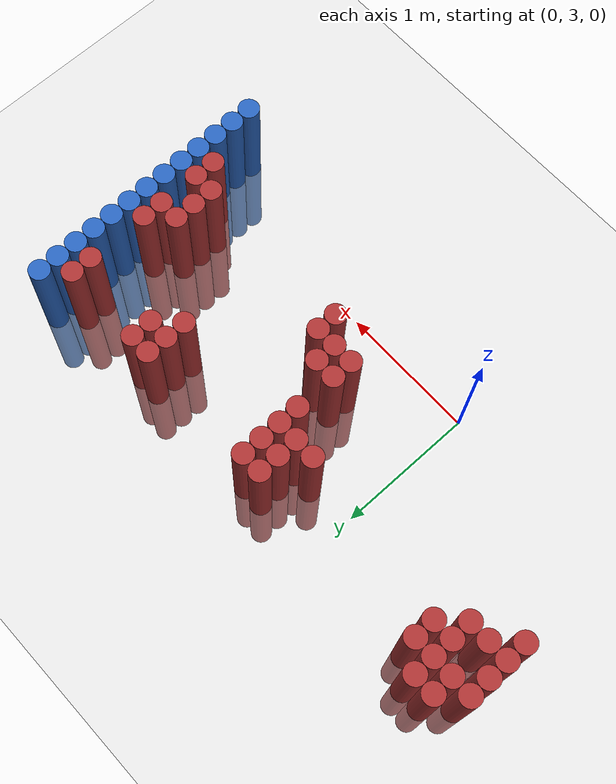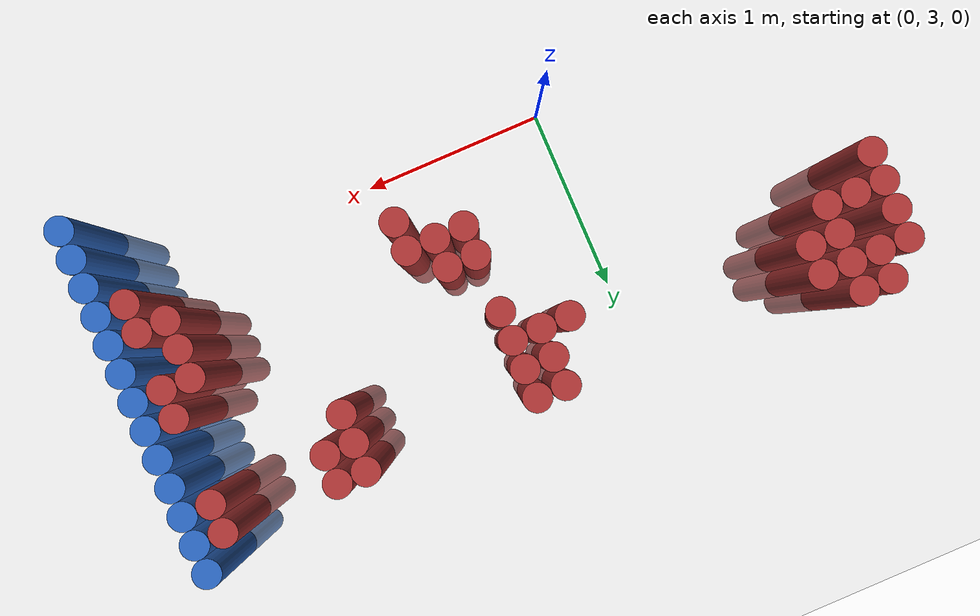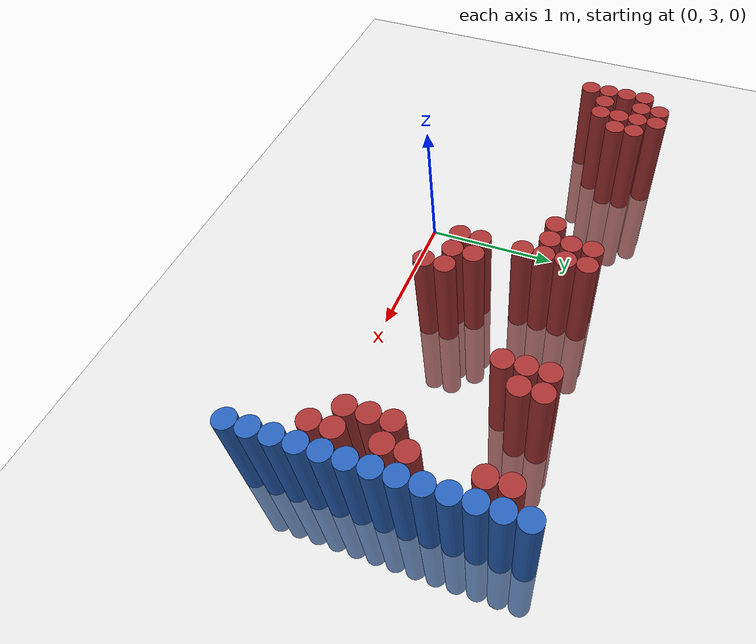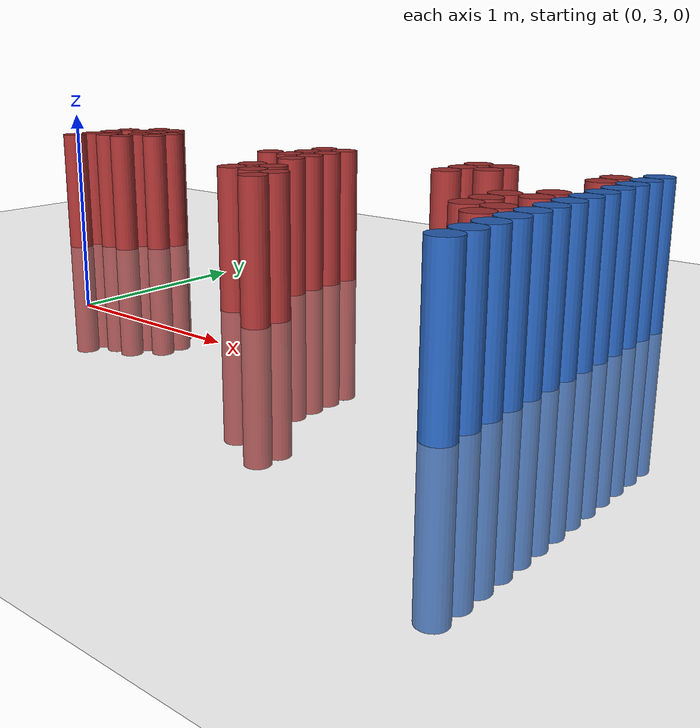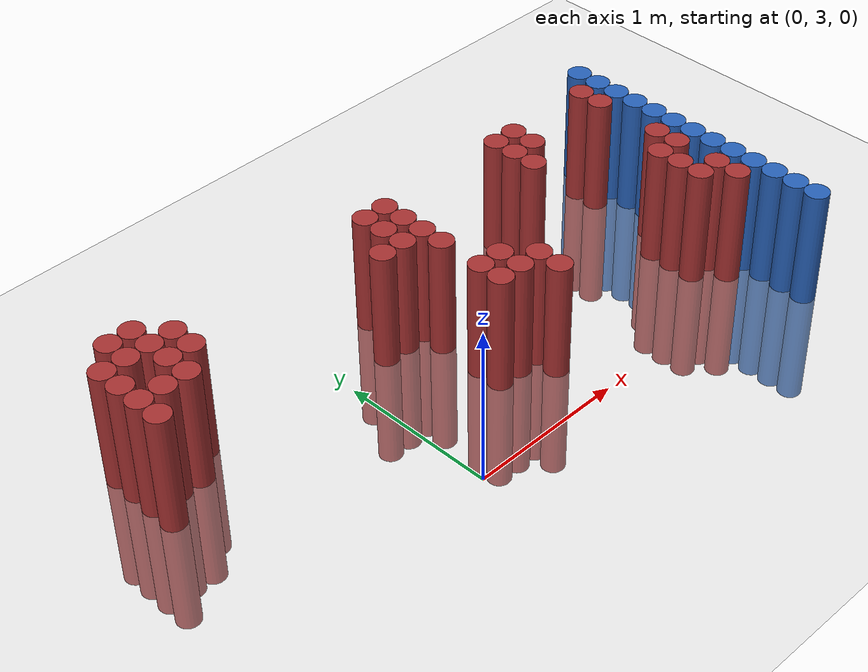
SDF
<sdf version="1.6">
 <world name="default">
  <model name="ground_plane">
   <static>1</static>
   <link name="link">
    <collision name="collision">
     <geometry><plane><normal>0 0 1</normal><size>100 100</size></plane></geometry>
     <surface><friction><ode><mu>100</mu><mu2>50</mu2></ode></friction></surface>
    </collision>
    <visual name="visual">
     <cast_shadows>0</cast_shadows>
     <geometry><plane><normal>0 0 1</normal><size>100 100</size></plane></geometry>
     <material>
      <script><uri>file://media/materials/scripts/gazebo.material</uri><name>Gazebo/Grey</name></script>
     </material>
    </visual>
   </link>
  </model>
  <model name="unit_cylinder_154">
   <static>1</static>
   <pose>-1.325000 3.925000 0.000000 0.000000 0.000000 0.000000</pose>
   <link name="link">
    <inertial>
     <mass>1</mass>
     <inertia><ixx>0.145833</ixx><ixy>0</ixy><ixz>0</ixz><iyy>0.145833</iyy><iyz>0</iyz><izz>0.125</izz></inertia>
    </inertial>
    <collision name="collision">
     <geometry><cylinder><radius>0.075000</radius><length>1.5</length></cylinder></geometry>
    </collision>
    <visual name="visual">
     <geometry><cylinder><radius>0.075000</radius><length>1.5</length></cylinder></geometry>
     <material>
      <ambient>0.648000 0.192000 0.192000 1</ambient>
      <diffuse>0.648000 0.192000 0.192000 1</diffuse>
     </material>
     <material>
      <script><name>Gazebo/Grey</name><uri>file://media/materials/scripts/gazebo.material</uri></script>
     </material>
    </visual>
   </link>
  </model>
  <model name="unit_cylinder_155">
   <static>1</static>
   <pose>-1.325000 4.075000 0.000000 0.000000 0.000000 0.000000</pose>
   <link name="link">
    <inertial>
     <mass>1</mass>
     <inertia><ixx>0.145833</ixx><ixy>0</ixy><ixz>0</ixz><iyy>0.145833</iyy><iyz>0</iyz><izz>0.125</izz></inertia>
    </inertial>
    <collision name="collision">
     <geometry><cylinder><radius>0.075000</radius><length>1.5</length></cylinder></geometry>
    </collision>
    <visual name="visual">
     <geometry><cylinder><radius>0.075000</radius><length>1.5</length></cylinder></geometry>
     <material>
      <ambient>0.648000 0.192000 0.192000 1</ambient>
      <diffuse>0.648000 0.192000 0.192000 1</diffuse>
     </material>
     <material>
      <script><name>Gazebo/Grey</name><uri>file://media/materials/scripts/gazebo.material</uri></script>
     </material>
    </visual>
   </link>
  </model>
  <model name="unit_cylinder_156">
   <static>1</static>
   <pose>-1.325000 4.225000 0.000000 0.000000 0.000000 0.000000</pose>
   <link name="link">
    <inertial>
     <mass>1</mass>
     <inertia><ixx>0.145833</ixx><ixy>0</ixy><ixz>0</ixz><iyy>0.145833</iyy><iyz>0</iyz><izz>0.125</izz></inertia>
    </inertial>
    <collision name="collision">
     <geometry><cylinder><radius>0.075000</radius><length>1.5</length></cylinder></geometry>
    </collision>
    <visual name="visual">
     <geometry><cylinder><radius>0.075000</radius><length>1.5</length></cylinder></geometry>
     <material>
      <ambient>0.648000 0.192000 0.192000 1</ambient>
      <diffuse>0.648000 0.192000 0.192000 1</diffuse>
     </material>
     <material>
      <script><name>Gazebo/Grey</name><uri>file://media/materials/scripts/gazebo.material</uri></script>
     </material>
    </visual>
   </link>
  </model>
  <model name="unit_cylinder_157">
   <static>1</static>
   <pose>-1.325000 4.375000 0.000000 0.000000 0.000000 0.000000</pose>
   <link name="link">
    <inertial>
     <mass>1</mass>
     <inertia><ixx>0.145833</ixx><ixy>0</ixy><ixz>0</ixz><iyy>0.145833</iyy><iyz>0</iyz><izz>0.125</izz></inertia>
    </inertial>
    <collision name="collision">
     <geometry><cylinder><radius>0.075000</radius><length>1.5</length></cylinder></geometry>
    </collision>
    <visual name="visual">
     <geometry><cylinder><radius>0.075000</radius><length>1.5</length></cylinder></geometry>
     <material>
      <ambient>0.648000 0.192000 0.192000 1</ambient>
      <diffuse>0.648000 0.192000 0.192000 1</diffuse>
     </material>
     <material>
      <script><name>Gazebo/Grey</name><uri>file://media/materials/scripts/gazebo.material</uri></script>
     </material>
    </visual>
   </link>
  </model>
  <model name="unit_cylinder_159">
   <static>1</static>
   <pose>-1.175000 4.075000 0.000000 0.000000 0.000000 0.000000</pose>
   <link name="link">
    <inertial>
     <mass>1</mass>
     <inertia><ixx>0.145833</ixx><ixy>0</ixy><ixz>0</ixz><iyy>0.145833</iyy><iyz>0</iyz><izz>0.125</izz></inertia>
    </inertial>
    <collision name="collision">
     <geometry><cylinder><radius>0.075000</radius><length>1.5</length></cylinder></geometry>
    </collision>
    <visual name="visual">
     <geometry><cylinder><radius>0.075000</radius><length>1.5</length></cylinder></geometry>
     <material>
      <ambient>0.648000 0.192000 0.192000 1</ambient>
      <diffuse>0.648000 0.192000 0.192000 1</diffuse>
     </material>
     <material>
      <script><name>Gazebo/Grey</name><uri>file://media/materials/scripts/gazebo.material</uri></script>
     </material>
    </visual>
   </link>
  </model>
  <model name="unit_cylinder_160">
   <static>1</static>
   <pose>-1.175000 4.375000 0.000000 0.000000 0.000000 0.000000</pose>
   <link name="link">
    <inertial>
     <mass>1</mass>
     <inertia><ixx>0.145833</ixx><ixy>0</ixy><ixz>0</ixz><iyy>0.145833</iyy><iyz>0</iyz><izz>0.125</izz></inertia>
    </inertial>
    <collision name="collision">
     <geometry><cylinder><radius>0.075000</radius><length>1.5</length></cylinder></geometry>
    </collision>
    <visual name="visual">
     <geometry><cylinder><radius>0.075000</radius><length>1.5</length></cylinder></geometry>
     <material>
      <ambient>0.648000 0.192000 0.192000 1</ambient>
      <diffuse>0.648000 0.192000 0.192000 1</diffuse>
     </material>
     <material>
      <script><name>Gazebo/Grey</name><uri>file://media/materials/scripts/gazebo.material</uri></script>
     </material>
    </visual>
   </link>
  </model>
  <model name="unit_cylinder_161">
   <static>1</static>
   <pose>-1.175000 4.525000 0.000000 0.000000 0.000000 0.000000</pose>
   <link name="link">
    <inertial>
     <mass>1</mass>
     <inertia><ixx>0.145833</ixx><ixy>0</ixy><ixz>0</ixz><iyy>0.145833</iyy><iyz>0</iyz><izz>0.125</izz></inertia>
    </inertial>
    <collision name="collision">
     <geometry><cylinder><radius>0.075000</radius><length>1.5</length></cylinder></geometry>
    </collision>
    <visual name="visual">
     <geometry><cylinder><radius>0.075000</radius><length>1.5</length></cylinder></geometry>
     <material>
      <ambient>0.648000 0.192000 0.192000 1</ambient>
      <diffuse>0.648000 0.192000 0.192000 1</diffuse>
     </material>
     <material>
      <script><name>Gazebo/Grey</name><uri>file://media/materials/scripts/gazebo.material</uri></script>
     </material>
    </visual>
   </link>
  </model>
  <model name="unit_cylinder_165">
   <static>1</static>
   <pose>-1.025000 4.075000 0.000000 0.000000 0.000000 0.000000</pose>
   <link name="link">
    <inertial>
     <mass>1</mass>
     <inertia><ixx>0.145833</ixx><ixy>0</ixy><ixz>0</ixz><iyy>0.145833</iyy><iyz>0</iyz><izz>0.125</izz></inertia>
    </inertial>
    <collision name="collision">
     <geometry><cylinder><radius>0.075000</radius><length>1.5</length></cylinder></geometry>
    </collision>
    <visual name="visual">
     <geometry><cylinder><radius>0.075000</radius><length>1.5</length></cylinder></geometry>
     <material>
      <ambient>0.648000 0.192000 0.192000 1</ambient>
      <diffuse>0.648000 0.192000 0.192000 1</diffuse>
     </material>
     <material>
      <script><name>Gazebo/Grey</name><uri>file://media/materials/scripts/gazebo.material</uri></script>
     </material>
    </visual>
   </link>
  </model>
  <model name="unit_cylinder_166">
   <static>1</static>
   <pose>-1.025000 4.225000 0.000000 0.000000 0.000000 0.000000</pose>
   <link name="link">
    <inertial>
     <mass>1</mass>
     <inertia><ixx>0.145833</ixx><ixy>0</ixy><ixz>0</ixz><iyy>0.145833</iyy><iyz>0</iyz><izz>0.125</izz></inertia>
    </inertial>
    <collision name="collision">
     <geometry><cylinder><radius>0.075000</radius><length>1.5</length></cylinder></geometry>
    </collision>
    <visual name="visual">
     <geometry><cylinder><radius>0.075000</radius><length>1.5</length></cylinder></geometry>
     <material>
      <ambient>0.648000 0.192000 0.192000 1</ambient>
      <diffuse>0.648000 0.192000 0.192000 1</diffuse>
     </material>
     <material>
      <script><name>Gazebo/Grey</name><uri>file://media/materials/scripts/gazebo.material</uri></script>
     </material>
    </visual>
   </link>
  </model>
  <model name="unit_cylinder_167">
   <static>1</static>
   <pose>-1.025000 4.375000 0.000000 0.000000 0.000000 0.000000</pose>
   <link name="link">
    <inertial>
     <mass>1</mass>
     <inertia><ixx>0.145833</ixx><ixy>0</ixy><ixz>0</ixz><iyy>0.145833</iyy><iyz>0</iyz><izz>0.125</izz></inertia>
    </inertial>
    <collision name="collision">
     <geometry><cylinder><radius>0.075000</radius><length>1.5</length></cylinder></geometry>
    </collision>
    <visual name="visual">
     <geometry><cylinder><radius>0.075000</radius><length>1.5</length></cylinder></geometry>
     <material>
      <ambient>0.648000 0.192000 0.192000 1</ambient>
      <diffuse>0.648000 0.192000 0.192000 1</diffuse>
     </material>
     <material>
      <script><name>Gazebo/Grey</name><uri>file://media/materials/scripts/gazebo.material</uri></script>
     </material>
    </visual>
   </link>
  </model>
  <model name="unit_cylinder_168">
   <static>1</static>
   <pose>-1.025000 4.525000 0.000000 0.000000 0.000000 0.000000</pose>
   <link name="link">
    <inertial>
     <mass>1</mass>
     <inertia><ixx>0.145833</ixx><ixy>0</ixy><ixz>0</ixz><iyy>0.145833</iyy><iyz>0</iyz><izz>0.125</izz></inertia>
    </inertial>
    <collision name="collision">
     <geometry><cylinder><radius>0.075000</radius><length>1.5</length></cylinder></geometry>
    </collision>
    <visual name="visual">
     <geometry><cylinder><radius>0.075000</radius><length>1.5</length></cylinder></geometry>
     <material>
      <ambient>0.648000 0.192000 0.192000 1</ambient>
      <diffuse>0.648000 0.192000 0.192000 1</diffuse>
     </material>
     <material>
      <script><name>Gazebo/Grey</name><uri>file://media/materials/scripts/gazebo.material</uri></script>
     </material>
    </visual>
   </link>
  </model>
  <model name="unit_cylinder_173">
   <static>1</static>
   <pose>-0.875000 4.225000 0.000000 0.000000 0.000000 0.000000</pose>
   <link name="link">
    <inertial>
     <mass>1</mass>
     <inertia><ixx>0.145833</ixx><ixy>0</ixy><ixz>0</ixz><iyy>0.145833</iyy><iyz>0</iyz><izz>0.125</izz></inertia>
    </inertial>
    <collision name="collision">
     <geometry><cylinder><radius>0.075000</radius><length>1.5</length></cylinder></geometry>
    </collision>
    <visual name="visual">
     <geometry><cylinder><radius>0.075000</radius><length>1.5</length></cylinder></geometry>
     <material>
      <ambient>0.648000 0.192000 0.192000 1</ambient>
      <diffuse>0.648000 0.192000 0.192000 1</diffuse>
     </material>
     <material>
      <script><name>Gazebo/Grey</name><uri>file://media/materials/scripts/gazebo.material</uri></script>
     </material>
    </visual>
   </link>
  </model>
  <model name="unit_cylinder_174">
   <static>1</static>
   <pose>-0.875000 4.375000 0.000000 0.000000 0.000000 0.000000</pose>
   <link name="link">
    <inertial>
     <mass>1</mass>
     <inertia><ixx>0.145833</ixx><ixy>0</ixy><ixz>0</ixz><iyy>0.145833</iyy><iyz>0</iyz><izz>0.125</izz></inertia>
    </inertial>
    <collision name="collision">
     <geometry><cylinder><radius>0.075000</radius><length>1.5</length></cylinder></geometry>
    </collision>
    <visual name="visual">
     <geometry><cylinder><radius>0.075000</radius><length>1.5</length></cylinder></geometry>
     <material>
      <ambient>0.648000 0.192000 0.192000 1</ambient>
      <diffuse>0.648000 0.192000 0.192000 1</diffuse>
     </material>
     <material>
      <script><name>Gazebo/Grey</name><uri>file://media/materials/scripts/gazebo.material</uri></script>
     </material>
    </visual>
   </link>
  </model>
  <model name="unit_cylinder_189">
   <static>1</static>
   <pose>0.325000 4.075000 0.000000 0.000000 0.000000 0.000000</pose>
   <link name="link">
    <inertial>
     <mass>1</mass>
     <inertia><ixx>0.145833</ixx><ixy>0</ixy><ixz>0</ixz><iyy>0.145833</iyy><iyz>0</iyz><izz>0.125</izz></inertia>
    </inertial>
    <collision name="collision">
     <geometry><cylinder><radius>0.075000</radius><length>1.5</length></cylinder></geometry>
    </collision>
    <visual name="visual">
     <geometry><cylinder><radius>0.075000</radius><length>1.5</length></cylinder></geometry>
     <material>
      <ambient>0.648000 0.192000 0.192000 1</ambient>
      <diffuse>0.648000 0.192000 0.192000 1</diffuse>
     </material>
     <material>
      <script><name>Gazebo/Grey</name><uri>file://media/materials/scripts/gazebo.material</uri></script>
     </material>
    </visual>
   </link>
  </model>
  <model name="unit_cylinder_194">
   <static>1</static>
   <pose>0.475000 4.075000 0.000000 0.000000 0.000000 0.000000</pose>
   <link name="link">
    <inertial>
     <mass>1</mass>
     <inertia><ixx>0.145833</ixx><ixy>0</ixy><ixz>0</ixz><iyy>0.145833</iyy><iyz>0</iyz><izz>0.125</izz></inertia>
    </inertial>
    <collision name="collision">
     <geometry><cylinder><radius>0.075000</radius><length>1.5</length></cylinder></geometry>
    </collision>
    <visual name="visual">
     <geometry><cylinder><radius>0.075000</radius><length>1.5</length></cylinder></geometry>
     <material>
      <ambient>0.648000 0.192000 0.192000 1</ambient>
      <diffuse>0.648000 0.192000 0.192000 1</diffuse>
     </material>
     <material>
      <script><name>Gazebo/Grey</name><uri>file://media/materials/scripts/gazebo.material</uri></script>
     </material>
    </visual>
   </link>
  </model>
  <model name="unit_cylinder_195">
   <static>1</static>
   <pose>0.475000 4.225000 0.000000 0.000000 0.000000 0.000000</pose>
   <link name="link">
    <inertial>
     <mass>1</mass>
     <inertia><ixx>0.145833</ixx><ixy>0</ixy><ixz>0</ixz><iyy>0.145833</iyy><iyz>0</iyz><izz>0.125</izz></inertia>
    </inertial>
    <collision name="collision">
     <geometry><cylinder><radius>0.075000</radius><length>1.5</length></cylinder></geometry>
    </collision>
    <visual name="visual">
     <geometry><cylinder><radius>0.075000</radius><length>1.5</length></cylinder></geometry>
     <material>
      <ambient>0.648000 0.192000 0.192000 1</ambient>
      <diffuse>0.648000 0.192000 0.192000 1</diffuse>
     </material>
     <material>
      <script><name>Gazebo/Grey</name><uri>file://media/materials/scripts/gazebo.material</uri></script>
     </material>
    </visual>
   </link>
  </model>
  <model name="unit_cylinder_196">
   <static>1</static>
   <pose>0.475000 4.375000 0.000000 0.000000 0.000000 0.000000</pose>
   <link name="link">
    <inertial>
     <mass>1</mass>
     <inertia><ixx>0.145833</ixx><ixy>0</ixy><ixz>0</ixz><iyy>0.145833</iyy><iyz>0</iyz><izz>0.125</izz></inertia>
    </inertial>
    <collision name="collision">
     <geometry><cylinder><radius>0.075000</radius><length>1.5</length></cylinder></geometry>
    </collision>
    <visual name="visual">
     <geometry><cylinder><radius>0.075000</radius><length>1.5</length></cylinder></geometry>
     <material>
      <ambient>0.648000 0.192000 0.192000 1</ambient>
      <diffuse>0.648000 0.192000 0.192000 1</diffuse>
     </material>
     <material>
      <script><name>Gazebo/Grey</name><uri>file://media/materials/scripts/gazebo.material</uri></script>
     </material>
    </visual>
   </link>
  </model>
  <model name="unit_cylinder_197">
   <static>1</static>
   <pose>0.625000 3.475000 0.000000 0.000000 0.000000 0.000000</pose>
   <link name="link">
    <inertial>
     <mass>1</mass>
     <inertia><ixx>0.145833</ixx><ixy>0</ixy><ixz>0</ixz><iyy>0.145833</iyy><iyz>0</iyz><izz>0.125</izz></inertia>
    </inertial>
    <collision name="collision">
     <geometry><cylinder><radius>0.075000</radius><length>1.5</length></cylinder></geometry>
    </collision>
    <visual name="visual">
     <geometry><cylinder><radius>0.075000</radius><length>1.5</length></cylinder></geometry>
     <material>
      <ambient>0.648000 0.192000 0.192000 1</ambient>
      <diffuse>0.648000 0.192000 0.192000 1</diffuse>
     </material>
     <material>
      <script><name>Gazebo/Grey</name><uri>file://media/materials/scripts/gazebo.material</uri></script>
     </material>
    </visual>
   </link>
  </model>
  <model name="unit_cylinder_198">
   <static>1</static>
   <pose>0.625000 3.625000 0.000000 0.000000 0.000000 0.000000</pose>
   <link name="link">
    <inertial>
     <mass>1</mass>
     <inertia><ixx>0.145833</ixx><ixy>0</ixy><ixz>0</ixz><iyy>0.145833</iyy><iyz>0</iyz><izz>0.125</izz></inertia>
    </inertial>
    <collision name="collision">
     <geometry><cylinder><radius>0.075000</radius><length>1.5</length></cylinder></geometry>
    </collision>
    <visual name="visual">
     <geometry><cylinder><radius>0.075000</radius><length>1.5</length></cylinder></geometry>
     <material>
      <ambient>0.648000 0.192000 0.192000 1</ambient>
      <diffuse>0.648000 0.192000 0.192000 1</diffuse>
     </material>
     <material>
      <script><name>Gazebo/Grey</name><uri>file://media/materials/scripts/gazebo.material</uri></script>
     </material>
    </visual>
   </link>
  </model>
  <model name="unit_cylinder_199">
   <static>1</static>
   <pose>0.625000 3.925000 0.000000 0.000000 0.000000 0.000000</pose>
   <link name="link">
    <inertial>
     <mass>1</mass>
     <inertia><ixx>0.145833</ixx><ixy>0</ixy><ixz>0</ixz><iyy>0.145833</iyy><iyz>0</iyz><izz>0.125</izz></inertia>
    </inertial>
    <collision name="collision">
     <geometry><cylinder><radius>0.075000</radius><length>1.5</length></cylinder></geometry>
    </collision>
    <visual name="visual">
     <geometry><cylinder><radius>0.075000</radius><length>1.5</length></cylinder></geometry>
     <material>
      <ambient>0.648000 0.192000 0.192000 1</ambient>
      <diffuse>0.648000 0.192000 0.192000 1</diffuse>
     </material>
     <material>
      <script><name>Gazebo/Grey</name><uri>file://media/materials/scripts/gazebo.material</uri></script>
     </material>
    </visual>
   </link>
  </model>
  <model name="unit_cylinder_200">
   <static>1</static>
   <pose>0.625000 4.075000 0.000000 0.000000 0.000000 0.000000</pose>
   <link name="link">
    <inertial>
     <mass>1</mass>
     <inertia><ixx>0.145833</ixx><ixy>0</ixy><ixz>0</ixz><iyy>0.145833</iyy><iyz>0</iyz><izz>0.125</izz></inertia>
    </inertial>
    <collision name="collision">
     <geometry><cylinder><radius>0.075000</radius><length>1.5</length></cylinder></geometry>
    </collision>
    <visual name="visual">
     <geometry><cylinder><radius>0.075000</radius><length>1.5</length></cylinder></geometry>
     <material>
      <ambient>0.648000 0.192000 0.192000 1</ambient>
      <diffuse>0.648000 0.192000 0.192000 1</diffuse>
     </material>
     <material>
      <script><name>Gazebo/Grey</name><uri>file://media/materials/scripts/gazebo.material</uri></script>
     </material>
    </visual>
   </link>
  </model>
  <model name="unit_cylinder_201">
   <static>1</static>
   <pose>0.625000 4.225000 0.000000 0.000000 0.000000 0.000000</pose>
   <link name="link">
    <inertial>
     <mass>1</mass>
     <inertia><ixx>0.145833</ixx><ixy>0</ixy><ixz>0</ixz><iyy>0.145833</iyy><iyz>0</iyz><izz>0.125</izz></inertia>
    </inertial>
    <collision name="collision">
     <geometry><cylinder><radius>0.075000</radius><length>1.5</length></cylinder></geometry>
    </collision>
    <visual name="visual">
     <geometry><cylinder><radius>0.075000</radius><length>1.5</length></cylinder></geometry>
     <material>
      <ambient>0.648000 0.192000 0.192000 1</ambient>
      <diffuse>0.648000 0.192000 0.192000 1</diffuse>
     </material>
     <material>
      <script><name>Gazebo/Grey</name><uri>file://media/materials/scripts/gazebo.material</uri></script>
     </material>
    </visual>
   </link>
  </model>
  <model name="unit_cylinder_202">
   <static>1</static>
   <pose>0.625000 4.375000 0.000000 0.000000 0.000000 0.000000</pose>
   <link name="link">
    <inertial>
     <mass>1</mass>
     <inertia><ixx>0.145833</ixx><ixy>0</ixy><ixz>0</ixz><iyy>0.145833</iyy><iyz>0</iyz><izz>0.125</izz></inertia>
    </inertial>
    <collision name="collision">
     <geometry><cylinder><radius>0.075000</radius><length>1.5</length></cylinder></geometry>
    </collision>
    <visual name="visual">
     <geometry><cylinder><radius>0.075000</radius><length>1.5</length></cylinder></geometry>
     <material>
      <ambient>0.648000 0.192000 0.192000 1</ambient>
      <diffuse>0.648000 0.192000 0.192000 1</diffuse>
     </material>
     <material>
      <script><name>Gazebo/Grey</name><uri>file://media/materials/scripts/gazebo.material</uri></script>
     </material>
    </visual>
   </link>
  </model>
  <model name="unit_cylinder_203">
   <static>1</static>
   <pose>0.775000 3.475000 0.000000 0.000000 0.000000 0.000000</pose>
   <link name="link">
    <inertial>
     <mass>1</mass>
     <inertia><ixx>0.145833</ixx><ixy>0</ixy><ixz>0</ixz><iyy>0.145833</iyy><iyz>0</iyz><izz>0.125</izz></inertia>
    </inertial>
    <collision name="collision">
     <geometry><cylinder><radius>0.075000</radius><length>1.5</length></cylinder></geometry>
    </collision>
    <visual name="visual">
     <geometry><cylinder><radius>0.075000</radius><length>1.5</length></cylinder></geometry>
     <material>
      <ambient>0.648000 0.192000 0.192000 1</ambient>
      <diffuse>0.648000 0.192000 0.192000 1</diffuse>
     </material>
     <material>
      <script><name>Gazebo/Grey</name><uri>file://media/materials/scripts/gazebo.material</uri></script>
     </material>
    </visual>
   </link>
  </model>
  <model name="unit_cylinder_204">
   <static>1</static>
   <pose>0.775000 3.625000 0.000000 0.000000 0.000000 0.000000</pose>
   <link name="link">
    <inertial>
     <mass>1</mass>
     <inertia><ixx>0.145833</ixx><ixy>0</ixy><ixz>0</ixz><iyy>0.145833</iyy><iyz>0</iyz><izz>0.125</izz></inertia>
    </inertial>
    <collision name="collision">
     <geometry><cylinder><radius>0.075000</radius><length>1.5</length></cylinder></geometry>
    </collision>
    <visual name="visual">
     <geometry><cylinder><radius>0.075000</radius><length>1.5</length></cylinder></geometry>
     <material>
      <ambient>0.648000 0.192000 0.192000 1</ambient>
      <diffuse>0.648000 0.192000 0.192000 1</diffuse>
     </material>
     <material>
      <script><name>Gazebo/Grey</name><uri>file://media/materials/scripts/gazebo.material</uri></script>
     </material>
    </visual>
   </link>
  </model>
  <model name="unit_cylinder_205">
   <static>1</static>
   <pose>0.925000 3.325000 0.000000 0.000000 0.000000 0.000000</pose>
   <link name="link">
    <inertial>
     <mass>1</mass>
     <inertia><ixx>0.145833</ixx><ixy>0</ixy><ixz>0</ixz><iyy>0.145833</iyy><iyz>0</iyz><izz>0.125</izz></inertia>
    </inertial>
    <collision name="collision">
     <geometry><cylinder><radius>0.075000</radius><length>1.5</length></cylinder></geometry>
    </collision>
    <visual name="visual">
     <geometry><cylinder><radius>0.075000</radius><length>1.5</length></cylinder></geometry>
     <material>
      <ambient>0.648000 0.192000 0.192000 1</ambient>
      <diffuse>0.648000 0.192000 0.192000 1</diffuse>
     </material>
     <material>
      <script><name>Gazebo/Grey</name><uri>file://media/materials/scripts/gazebo.material</uri></script>
     </material>
    </visual>
   </link>
  </model>
  <model name="unit_cylinder_206">
   <static>1</static>
   <pose>0.925000 3.475000 0.000000 0.000000 0.000000 0.000000</pose>
   <link name="link">
    <inertial>
     <mass>1</mass>
     <inertia><ixx>0.145833</ixx><ixy>0</ixy><ixz>0</ixz><iyy>0.145833</iyy><iyz>0</iyz><izz>0.125</izz></inertia>
    </inertial>
    <collision name="collision">
     <geometry><cylinder><radius>0.075000</radius><length>1.5</length></cylinder></geometry>
    </collision>
    <visual name="visual">
     <geometry><cylinder><radius>0.075000</radius><length>1.5</length></cylinder></geometry>
     <material>
      <ambient>0.648000 0.192000 0.192000 1</ambient>
      <diffuse>0.648000 0.192000 0.192000 1</diffuse>
     </material>
     <material>
      <script><name>Gazebo/Grey</name><uri>file://media/materials/scripts/gazebo.material</uri></script>
     </material>
    </visual>
   </link>
  </model>
  <model name="unit_cylinder_207">
   <static>1</static>
   <pose>1.525000 4.075000 0.000000 0.000000 0.000000 0.000000</pose>
   <link name="link">
    <inertial>
     <mass>1</mass>
     <inertia><ixx>0.145833</ixx><ixy>0</ixy><ixz>0</ixz><iyy>0.145833</iyy><iyz>0</iyz><izz>0.125</izz></inertia>
    </inertial>
    <collision name="collision">
     <geometry><cylinder><radius>0.075000</radius><length>1.5</length></cylinder></geometry>
    </collision>
    <visual name="visual">
     <geometry><cylinder><radius>0.075000</radius><length>1.5</length></cylinder></geometry>
     <material>
      <ambient>0.648000 0.192000 0.192000 1</ambient>
      <diffuse>0.648000 0.192000 0.192000 1</diffuse>
     </material>
     <material>
      <script><name>Gazebo/Grey</name><uri>file://media/materials/scripts/gazebo.material</uri></script>
     </material>
    </visual>
   </link>
  </model>
  <model name="unit_cylinder_208">
   <static>1</static>
   <pose>1.525000 4.225000 0.000000 0.000000 0.000000 0.000000</pose>
   <link name="link">
    <inertial>
     <mass>1</mass>
     <inertia><ixx>0.145833</ixx><ixy>0</ixy><ixz>0</ixz><iyy>0.145833</iyy><iyz>0</iyz><izz>0.125</izz></inertia>
    </inertial>
    <collision name="collision">
     <geometry><cylinder><radius>0.075000</radius><length>1.5</length></cylinder></geometry>
    </collision>
    <visual name="visual">
     <geometry><cylinder><radius>0.075000</radius><length>1.5</length></cylinder></geometry>
     <material>
      <ambient>0.648000 0.192000 0.192000 1</ambient>
      <diffuse>0.648000 0.192000 0.192000 1</diffuse>
     </material>
     <material>
      <script><name>Gazebo/Grey</name><uri>file://media/materials/scripts/gazebo.material</uri></script>
     </material>
    </visual>
   </link>
  </model>
  <model name="unit_cylinder_209">
   <static>1</static>
   <pose>1.525000 4.375000 0.000000 0.000000 0.000000 0.000000</pose>
   <link name="link">
    <inertial>
     <mass>1</mass>
     <inertia><ixx>0.145833</ixx><ixy>0</ixy><ixz>0</ixz><iyy>0.145833</iyy><iyz>0</iyz><izz>0.125</izz></inertia>
    </inertial>
    <collision name="collision">
     <geometry><cylinder><radius>0.075000</radius><length>1.5</length></cylinder></geometry>
    </collision>
    <visual name="visual">
     <geometry><cylinder><radius>0.075000</radius><length>1.5</length></cylinder></geometry>
     <material>
      <ambient>0.648000 0.192000 0.192000 1</ambient>
      <diffuse>0.648000 0.192000 0.192000 1</diffuse>
     </material>
     <material>
      <script><name>Gazebo/Grey</name><uri>file://media/materials/scripts/gazebo.material</uri></script>
     </material>
    </visual>
   </link>
  </model>
  <model name="unit_cylinder_212">
   <static>1</static>
   <pose>1.675000 4.225000 0.000000 0.000000 0.000000 0.000000</pose>
   <link name="link">
    <inertial>
     <mass>1</mass>
     <inertia><ixx>0.145833</ixx><ixy>0</ixy><ixz>0</ixz><iyy>0.145833</iyy><iyz>0</iyz><izz>0.125</izz></inertia>
    </inertial>
    <collision name="collision">
     <geometry><cylinder><radius>0.075000</radius><length>1.5</length></cylinder></geometry>
    </collision>
    <visual name="visual">
     <geometry><cylinder><radius>0.075000</radius><length>1.5</length></cylinder></geometry>
     <material>
      <ambient>0.648000 0.192000 0.192000 1</ambient>
      <diffuse>0.648000 0.192000 0.192000 1</diffuse>
     </material>
     <material>
      <script><name>Gazebo/Grey</name><uri>file://media/materials/scripts/gazebo.material</uri></script>
     </material>
    </visual>
   </link>
  </model>
  <model name="unit_cylinder_213">
   <static>1</static>
   <pose>1.675000 4.375000 0.000000 0.000000 0.000000 0.000000</pose>
   <link name="link">
    <inertial>
     <mass>1</mass>
     <inertia><ixx>0.145833</ixx><ixy>0</ixy><ixz>0</ixz><iyy>0.145833</iyy><iyz>0</iyz><izz>0.125</izz></inertia>
    </inertial>
    <collision name="collision">
     <geometry><cylinder><radius>0.075000</radius><length>1.5</length></cylinder></geometry>
    </collision>
    <visual name="visual">
     <geometry><cylinder><radius>0.075000</radius><length>1.5</length></cylinder></geometry>
     <material>
      <ambient>0.648000 0.192000 0.192000 1</ambient>
      <diffuse>0.648000 0.192000 0.192000 1</diffuse>
     </material>
     <material>
      <script><name>Gazebo/Grey</name><uri>file://media/materials/scripts/gazebo.material</uri></script>
     </material>
    </visual>
   </link>
  </model>
  <model name="unit_cylinder_221">
   <static>1</static>
   <pose>2.125000 3.325000 0.000000 0.000000 0.000000 0.000000</pose>
   <link name="link">
    <inertial>
     <mass>1</mass>
     <inertia><ixx>0.145833</ixx><ixy>0</ixy><ixz>0</ixz><iyy>0.145833</iyy><iyz>0</iyz><izz>0.125</izz></inertia>
    </inertial>
    <collision name="collision">
     <geometry><cylinder><radius>0.075000</radius><length>1.5</length></cylinder></geometry>
    </collision>
    <visual name="visual">
     <geometry><cylinder><radius>0.075000</radius><length>1.5</length></cylinder></geometry>
     <material>
      <ambient>0.648000 0.192000 0.192000 1</ambient>
      <diffuse>0.648000 0.192000 0.192000 1</diffuse>
     </material>
     <material>
      <script><name>Gazebo/Grey</name><uri>file://media/materials/scripts/gazebo.material</uri></script>
     </material>
    </visual>
   </link>
  </model>
  <model name="unit_cylinder_222">
   <static>1</static>
   <pose>2.125000 3.475000 0.000000 0.000000 0.000000 0.000000</pose>
   <link name="link">
    <inertial>
     <mass>1</mass>
     <inertia><ixx>0.145833</ixx><ixy>0</ixy><ixz>0</ixz><iyy>0.145833</iyy><iyz>0</iyz><izz>0.125</izz></inertia>
    </inertial>
    <collision name="collision">
     <geometry><cylinder><radius>0.075000</radius><length>1.5</length></cylinder></geometry>
    </collision>
    <visual name="visual">
     <geometry><cylinder><radius>0.075000</radius><length>1.5</length></cylinder></geometry>
     <material>
      <ambient>0.648000 0.192000 0.192000 1</ambient>
      <diffuse>0.648000 0.192000 0.192000 1</diffuse>
     </material>
     <material>
      <script><name>Gazebo/Grey</name><uri>file://media/materials/scripts/gazebo.material</uri></script>
     </material>
    </visual>
   </link>
  </model>
  <model name="unit_cylinder_223">
   <static>1</static>
   <pose>2.125000 3.625000 0.000000 0.000000 0.000000 0.000000</pose>
   <link name="link">
    <inertial>
     <mass>1</mass>
     <inertia><ixx>0.145833</ixx><ixy>0</ixy><ixz>0</ixz><iyy>0.145833</iyy><iyz>0</iyz><izz>0.125</izz></inertia>
    </inertial>
    <collision name="collision">
     <geometry><cylinder><radius>0.075000</radius><length>1.5</length></cylinder></geometry>
    </collision>
    <visual name="visual">
     <geometry><cylinder><radius>0.075000</radius><length>1.5</length></cylinder></geometry>
     <material>
      <ambient>0.648000 0.192000 0.192000 1</ambient>
      <diffuse>0.648000 0.192000 0.192000 1</diffuse>
     </material>
     <material>
      <script><name>Gazebo/Grey</name><uri>file://media/materials/scripts/gazebo.material</uri></script>
     </material>
    </visual>
   </link>
  </model>
  <model name="unit_cylinder_231">
   <static>1</static>
   <pose>2.275000 3.175000 0.000000 0.000000 0.000000 0.000000</pose>
   <link name="link">
    <inertial>
     <mass>1</mass>
     <inertia><ixx>0.145833</ixx><ixy>0</ixy><ixz>0</ixz><iyy>0.145833</iyy><iyz>0</iyz><izz>0.125</izz></inertia>
    </inertial>
    <collision name="collision">
     <geometry><cylinder><radius>0.075000</radius><length>1.5</length></cylinder></geometry>
    </collision>
    <visual name="visual">
     <geometry><cylinder><radius>0.075000</radius><length>1.5</length></cylinder></geometry>
     <material>
      <ambient>0.648000 0.192000 0.192000 1</ambient>
      <diffuse>0.648000 0.192000 0.192000 1</diffuse>
     </material>
     <material>
      <script><name>Gazebo/Grey</name><uri>file://media/materials/scripts/gazebo.material</uri></script>
     </material>
    </visual>
   </link>
  </model>
  <model name="unit_cylinder_232">
   <static>1</static>
   <pose>2.275000 3.325000 0.000000 0.000000 0.000000 0.000000</pose>
   <link name="link">
    <inertial>
     <mass>1</mass>
     <inertia><ixx>0.145833</ixx><ixy>0</ixy><ixz>0</ixz><iyy>0.145833</iyy><iyz>0</iyz><izz>0.125</izz></inertia>
    </inertial>
    <collision name="collision">
     <geometry><cylinder><radius>0.075000</radius><length>1.5</length></cylinder></geometry>
    </collision>
    <visual name="visual">
     <geometry><cylinder><radius>0.075000</radius><length>1.5</length></cylinder></geometry>
     <material>
      <ambient>0.648000 0.192000 0.192000 1</ambient>
      <diffuse>0.648000 0.192000 0.192000 1</diffuse>
     </material>
     <material>
      <script><name>Gazebo/Grey</name><uri>file://media/materials/scripts/gazebo.material</uri></script>
     </material>
    </visual>
   </link>
  </model>
  <model name="unit_cylinder_233">
   <static>1</static>
   <pose>2.275000 3.625000 0.000000 0.000000 0.000000 0.000000</pose>
   <link name="link">
    <inertial>
     <mass>1</mass>
     <inertia><ixx>0.145833</ixx><ixy>0</ixy><ixz>0</ixz><iyy>0.145833</iyy><iyz>0</iyz><izz>0.125</izz></inertia>
    </inertial>
    <collision name="collision">
     <geometry><cylinder><radius>0.075000</radius><length>1.5</length></cylinder></geometry>
    </collision>
    <visual name="visual">
     <geometry><cylinder><radius>0.075000</radius><length>1.5</length></cylinder></geometry>
     <material>
      <ambient>0.648000 0.192000 0.192000 1</ambient>
      <diffuse>0.648000 0.192000 0.192000 1</diffuse>
     </material>
     <material>
      <script><name>Gazebo/Grey</name><uri>file://media/materials/scripts/gazebo.material</uri></script>
     </material>
    </visual>
   </link>
  </model>
  <model name="unit_cylinder_234">
   <static>1</static>
   <pose>2.275000 3.775000 0.000000 0.000000 0.000000 0.000000</pose>
   <link name="link">
    <inertial>
     <mass>1</mass>
     <inertia><ixx>0.145833</ixx><ixy>0</ixy><ixz>0</ixz><iyy>0.145833</iyy><iyz>0</iyz><izz>0.125</izz></inertia>
    </inertial>
    <collision name="collision">
     <geometry><cylinder><radius>0.075000</radius><length>1.5</length></cylinder></geometry>
    </collision>
    <visual name="visual">
     <geometry><cylinder><radius>0.075000</radius><length>1.5</length></cylinder></geometry>
     <material>
      <ambient>0.648000 0.192000 0.192000 1</ambient>
      <diffuse>0.648000 0.192000 0.192000 1</diffuse>
     </material>
     <material>
      <script><name>Gazebo/Grey</name><uri>file://media/materials/scripts/gazebo.material</uri></script>
     </material>
    </visual>
   </link>
  </model>
  <model name="unit_cylinder_235">
   <static>1</static>
   <pose>2.275000 4.225000 0.000000 0.000000 0.000000 0.000000</pose>
   <link name="link">
    <inertial>
     <mass>1</mass>
     <inertia><ixx>0.145833</ixx><ixy>0</ixy><ixz>0</ixz><iyy>0.145833</iyy><iyz>0</iyz><izz>0.125</izz></inertia>
    </inertial>
    <collision name="collision">
     <geometry><cylinder><radius>0.075000</radius><length>1.5</length></cylinder></geometry>
    </collision>
    <visual name="visual">
     <geometry><cylinder><radius>0.075000</radius><length>1.5</length></cylinder></geometry>
     <material>
      <ambient>0.648000 0.192000 0.192000 1</ambient>
      <diffuse>0.648000 0.192000 0.192000 1</diffuse>
     </material>
     <material>
      <script><name>Gazebo/Grey</name><uri>file://media/materials/scripts/gazebo.material</uri></script>
     </material>
    </visual>
   </link>
  </model>
  <model name="unit_cylinder_236">
   <static>1</static>
   <pose>2.275000 4.375000 0.000000 0.000000 0.000000 0.000000</pose>
   <link name="link">
    <inertial>
     <mass>1</mass>
     <inertia><ixx>0.145833</ixx><ixy>0</ixy><ixz>0</ixz><iyy>0.145833</iyy><iyz>0</iyz><izz>0.125</izz></inertia>
    </inertial>
    <collision name="collision">
     <geometry><cylinder><radius>0.075000</radius><length>1.5</length></cylinder></geometry>
    </collision>
    <visual name="visual">
     <geometry><cylinder><radius>0.075000</radius><length>1.5</length></cylinder></geometry>
     <material>
      <ambient>0.648000 0.192000 0.192000 1</ambient>
      <diffuse>0.648000 0.192000 0.192000 1</diffuse>
     </material>
     <material>
      <script><name>Gazebo/Grey</name><uri>file://media/materials/scripts/gazebo.material</uri></script>
     </material>
    </visual>
   </link>
  </model>
  <model name="unit_cylinder_254">
   <static>1</static>
   <pose>2.425000 2.725000 0.000000 0.000000 0.000000 0.000000</pose>
   <link name="link">
    <inertial>
     <mass>1</mass>
     <inertia><ixx>0.145833</ixx><ixy>0</ixy><ixz>0</ixz><iyy>0.145833</iyy><iyz>0</iyz><izz>0.125</izz></inertia>
    </inertial>
    <collision name="collision">
     <geometry><cylinder><radius>0.075000</radius><length>1.5</length></cylinder></geometry>
    </collision>
    <visual name="visual">
     <geometry><cylinder><radius>0.075000</radius><length>1.5</length></cylinder></geometry>
     <material>
      <ambient>0.152000 0.379000 0.720000 1</ambient>
      <diffuse>0.152000 0.379000 0.720000 1</diffuse>
     </material>
     <material>
      <script><name>Gazebo/Grey</name><uri>file://media/materials/scripts/gazebo.material</uri></script>
     </material>
    </visual>
   </link>
  </model>
  <model name="unit_cylinder_255">
   <static>1</static>
   <pose>2.425000 2.875000 0.000000 0.000000 0.000000 0.000000</pose>
   <link name="link">
    <inertial>
     <mass>1</mass>
     <inertia><ixx>0.145833</ixx><ixy>0</ixy><ixz>0</ixz><iyy>0.145833</iyy><iyz>0</iyz><izz>0.125</izz></inertia>
    </inertial>
    <collision name="collision">
     <geometry><cylinder><radius>0.075000</radius><length>1.5</length></cylinder></geometry>
    </collision>
    <visual name="visual">
     <geometry><cylinder><radius>0.075000</radius><length>1.5</length></cylinder></geometry>
     <material>
      <ambient>0.152000 0.379000 0.720000 1</ambient>
      <diffuse>0.152000 0.379000 0.720000 1</diffuse>
     </material>
     <material>
      <script><name>Gazebo/Grey</name><uri>file://media/materials/scripts/gazebo.material</uri></script>
     </material>
    </visual>
   </link>
  </model>
  <model name="unit_cylinder_256">
   <static>1</static>
   <pose>2.425000 3.025000 0.000000 0.000000 0.000000 0.000000</pose>
   <link name="link">
    <inertial>
     <mass>1</mass>
     <inertia><ixx>0.145833</ixx><ixy>0</ixy><ixz>0</ixz><iyy>0.145833</iyy><iyz>0</iyz><izz>0.125</izz></inertia>
    </inertial>
    <collision name="collision">
     <geometry><cylinder><radius>0.075000</radius><length>1.5</length></cylinder></geometry>
    </collision>
    <visual name="visual">
     <geometry><cylinder><radius>0.075000</radius><length>1.5</length></cylinder></geometry>
     <material>
      <ambient>0.152000 0.379000 0.720000 1</ambient>
      <diffuse>0.152000 0.379000 0.720000 1</diffuse>
     </material>
     <material>
      <script><name>Gazebo/Grey</name><uri>file://media/materials/scripts/gazebo.material</uri></script>
     </material>
    </visual>
   </link>
  </model>
  <model name="unit_cylinder_257">
   <static>1</static>
   <pose>2.425000 3.175000 0.000000 0.000000 0.000000 0.000000</pose>
   <link name="link">
    <inertial>
     <mass>1</mass>
     <inertia><ixx>0.145833</ixx><ixy>0</ixy><ixz>0</ixz><iyy>0.145833</iyy><iyz>0</iyz><izz>0.125</izz></inertia>
    </inertial>
    <collision name="collision">
     <geometry><cylinder><radius>0.075000</radius><length>1.5</length></cylinder></geometry>
    </collision>
    <visual name="visual">
     <geometry><cylinder><radius>0.075000</radius><length>1.5</length></cylinder></geometry>
     <material>
      <ambient>0.152000 0.379000 0.720000 1</ambient>
      <diffuse>0.152000 0.379000 0.720000 1</diffuse>
     </material>
     <material>
      <script><name>Gazebo/Grey</name><uri>file://media/materials/scripts/gazebo.material</uri></script>
     </material>
    </visual>
   </link>
  </model>
  <model name="unit_cylinder_258">
   <static>1</static>
   <pose>2.425000 3.325000 0.000000 0.000000 0.000000 0.000000</pose>
   <link name="link">
    <inertial>
     <mass>1</mass>
     <inertia><ixx>0.145833</ixx><ixy>0</ixy><ixz>0</ixz><iyy>0.145833</iyy><iyz>0</iyz><izz>0.125</izz></inertia>
    </inertial>
    <collision name="collision">
     <geometry><cylinder><radius>0.075000</radius><length>1.5</length></cylinder></geometry>
    </collision>
    <visual name="visual">
     <geometry><cylinder><radius>0.075000</radius><length>1.5</length></cylinder></geometry>
     <material>
      <ambient>0.152000 0.379000 0.720000 1</ambient>
      <diffuse>0.152000 0.379000 0.720000 1</diffuse>
     </material>
     <material>
      <script><name>Gazebo/Grey</name><uri>file://media/materials/scripts/gazebo.material</uri></script>
     </material>
    </visual>
   </link>
  </model>
  <model name="unit_cylinder_259">
   <static>1</static>
   <pose>2.425000 3.475000 0.000000 0.000000 0.000000 0.000000</pose>
   <link name="link">
    <inertial>
     <mass>1</mass>
     <inertia><ixx>0.145833</ixx><ixy>0</ixy><ixz>0</ixz><iyy>0.145833</iyy><iyz>0</iyz><izz>0.125</izz></inertia>
    </inertial>
    <collision name="collision">
     <geometry><cylinder><radius>0.075000</radius><length>1.5</length></cylinder></geometry>
    </collision>
    <visual name="visual">
     <geometry><cylinder><radius>0.075000</radius><length>1.5</length></cylinder></geometry>
     <material>
      <ambient>0.152000 0.379000 0.720000 1</ambient>
      <diffuse>0.152000 0.379000 0.720000 1</diffuse>
     </material>
     <material>
      <script><name>Gazebo/Grey</name><uri>file://media/materials/scripts/gazebo.material</uri></script>
     </material>
    </visual>
   </link>
  </model>
  <model name="unit_cylinder_260">
   <static>1</static>
   <pose>2.425000 3.625000 0.000000 0.000000 0.000000 0.000000</pose>
   <link name="link">
    <inertial>
     <mass>1</mass>
     <inertia><ixx>0.145833</ixx><ixy>0</ixy><ixz>0</ixz><iyy>0.145833</iyy><iyz>0</iyz><izz>0.125</izz></inertia>
    </inertial>
    <collision name="collision">
     <geometry><cylinder><radius>0.075000</radius><length>1.5</length></cylinder></geometry>
    </collision>
    <visual name="visual">
     <geometry><cylinder><radius>0.075000</radius><length>1.5</length></cylinder></geometry>
     <material>
      <ambient>0.152000 0.379000 0.720000 1</ambient>
      <diffuse>0.152000 0.379000 0.720000 1</diffuse>
     </material>
     <material>
      <script><name>Gazebo/Grey</name><uri>file://media/materials/scripts/gazebo.material</uri></script>
     </material>
    </visual>
   </link>
  </model>
  <model name="unit_cylinder_261">
   <static>1</static>
   <pose>2.425000 3.775000 0.000000 0.000000 0.000000 0.000000</pose>
   <link name="link">
    <inertial>
     <mass>1</mass>
     <inertia><ixx>0.145833</ixx><ixy>0</ixy><ixz>0</ixz><iyy>0.145833</iyy><iyz>0</iyz><izz>0.125</izz></inertia>
    </inertial>
    <collision name="collision">
     <geometry><cylinder><radius>0.075000</radius><length>1.5</length></cylinder></geometry>
    </collision>
    <visual name="visual">
     <geometry><cylinder><radius>0.075000</radius><length>1.5</length></cylinder></geometry>
     <material>
      <ambient>0.152000 0.379000 0.720000 1</ambient>
      <diffuse>0.152000 0.379000 0.720000 1</diffuse>
     </material>
     <material>
      <script><name>Gazebo/Grey</name><uri>file://media/materials/scripts/gazebo.material</uri></script>
     </material>
    </visual>
   </link>
  </model>
  <model name="unit_cylinder_262">
   <static>1</static>
   <pose>2.425000 3.925000 0.000000 0.000000 0.000000 0.000000</pose>
   <link name="link">
    <inertial>
     <mass>1</mass>
     <inertia><ixx>0.145833</ixx><ixy>0</ixy><ixz>0</ixz><iyy>0.145833</iyy><iyz>0</iyz><izz>0.125</izz></inertia>
    </inertial>
    <collision name="collision">
     <geometry><cylinder><radius>0.075000</radius><length>1.5</length></cylinder></geometry>
    </collision>
    <visual name="visual">
     <geometry><cylinder><radius>0.075000</radius><length>1.5</length></cylinder></geometry>
     <material>
      <ambient>0.152000 0.379000 0.720000 1</ambient>
      <diffuse>0.152000 0.379000 0.720000 1</diffuse>
     </material>
     <material>
      <script><name>Gazebo/Grey</name><uri>file://media/materials/scripts/gazebo.material</uri></script>
     </material>
    </visual>
   </link>
  </model>
  <model name="unit_cylinder_263">
   <static>1</static>
   <pose>2.425000 4.075000 0.000000 0.000000 0.000000 0.000000</pose>
   <link name="link">
    <inertial>
     <mass>1</mass>
     <inertia><ixx>0.145833</ixx><ixy>0</ixy><ixz>0</ixz><iyy>0.145833</iyy><iyz>0</iyz><izz>0.125</izz></inertia>
    </inertial>
    <collision name="collision">
     <geometry><cylinder><radius>0.075000</radius><length>1.5</length></cylinder></geometry>
    </collision>
    <visual name="visual">
     <geometry><cylinder><radius>0.075000</radius><length>1.5</length></cylinder></geometry>
     <material>
      <ambient>0.152000 0.379000 0.720000 1</ambient>
      <diffuse>0.152000 0.379000 0.720000 1</diffuse>
     </material>
     <material>
      <script><name>Gazebo/Grey</name><uri>file://media/materials/scripts/gazebo.material</uri></script>
     </material>
    </visual>
   </link>
  </model>
  <model name="unit_cylinder_264">
   <static>1</static>
   <pose>2.425000 4.225000 0.000000 0.000000 0.000000 0.000000</pose>
   <link name="link">
    <inertial>
     <mass>1</mass>
     <inertia><ixx>0.145833</ixx><ixy>0</ixy><ixz>0</ixz><iyy>0.145833</iyy><iyz>0</iyz><izz>0.125</izz></inertia>
    </inertial>
    <collision name="collision">
     <geometry><cylinder><radius>0.075000</radius><length>1.5</length></cylinder></geometry>
    </collision>
    <visual name="visual">
     <geometry><cylinder><radius>0.075000</radius><length>1.5</length></cylinder></geometry>
     <material>
      <ambient>0.152000 0.379000 0.720000 1</ambient>
      <diffuse>0.152000 0.379000 0.720000 1</diffuse>
     </material>
     <material>
      <script><name>Gazebo/Grey</name><uri>file://media/materials/scripts/gazebo.material</uri></script>
     </material>
    </visual>
   </link>
  </model>
  <model name="unit_cylinder_265">
   <static>1</static>
   <pose>2.425000 4.375000 0.000000 0.000000 0.000000 0.000000</pose>
   <link name="link">
    <inertial>
     <mass>1</mass>
     <inertia><ixx>0.145833</ixx><ixy>0</ixy><ixz>0</ixz><iyy>0.145833</iyy><iyz>0</iyz><izz>0.125</izz></inertia>
    </inertial>
    <collision name="collision">
     <geometry><cylinder><radius>0.075000</radius><length>1.5</length></cylinder></geometry>
    </collision>
    <visual name="visual">
     <geometry><cylinder><radius>0.075000</radius><length>1.5</length></cylinder></geometry>
     <material>
      <ambient>0.152000 0.379000 0.720000 1</ambient>
      <diffuse>0.152000 0.379000 0.720000 1</diffuse>
     </material>
     <material>
      <script><name>Gazebo/Grey</name><uri>file://media/materials/scripts/gazebo.material</uri></script>
     </material>
    </visual>
   </link>
  </model>
  <model name="unit_cylinder_266">
   <static>1</static>
   <pose>2.425000 4.525000 0.000000 0.000000 0.000000 0.000000</pose>
   <link name="link">
    <inertial>
     <mass>1</mass>
     <inertia><ixx>0.145833</ixx><ixy>0</ixy><ixz>0</ixz><iyy>0.145833</iyy><iyz>0</iyz><izz>0.125</izz></inertia>
    </inertial>
    <collision name="collision">
     <geometry><cylinder><radius>0.075000</radius><length>1.5</length></cylinder></geometry>
    </collision>
    <visual name="visual">
     <geometry><cylinder><radius>0.075000</radius><length>1.5</length></cylinder></geometry>
     <material>
      <ambient>0.152000 0.379000 0.720000 1</ambient>
      <diffuse>0.152000 0.379000 0.720000 1</diffuse>
     </material>
     <material>
      <script><name>Gazebo/Grey</name><uri>file://media/materials/scripts/gazebo.material</uri></script>
     </material>
    </visual>
   </link>
  </model>
 </world>
</sdf>
